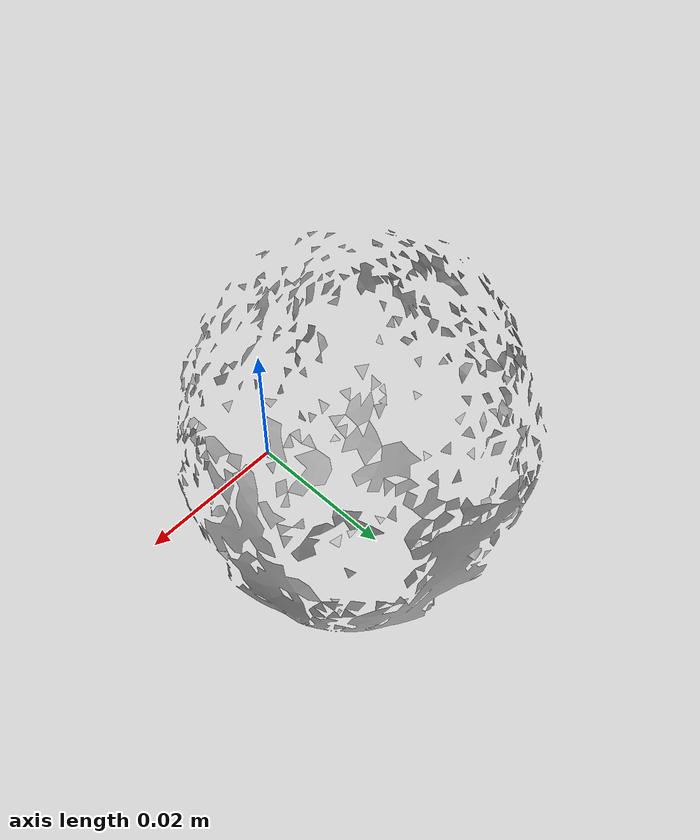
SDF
<?xml version="1.0" ?>
<sdf version="1.4">
  <model name='ycb_012_strawberry'>
    <link name='body'>
      <inertial>
        <mass>0.018</mass>
        <pose>-0.0014938727782 0.015432679886 0.0211145032806 0 0 0</pose>
        <inertia>
          <ixx>3.73097308073e-06</ixx>
          <ixy>-3.64236231046e-07</ixy>
          <ixz>-9.69512442571e-09</ixz>
          <iyy>3.8071871695e-06</iyy>
          <iyz>-1.11398280319e-07</iyz>
          <izz>3.76162292104e-06</izz>
        </inertia>
      </inertial>
      <visual name='ycb_012_strawberry_visual'>
        <pose>0 0 0 0 0 0</pose>
        <geometry>
          <mesh>
            <uri>model://ycb_012_strawberry/meshes/textured.dae</uri>
          </mesh>
        </geometry>
      </visual>
      <collision name='ycb_012_strawberry_collision'>
        <pose>0 0 0 0 0 0</pose>
        <geometry>
          <mesh>
            <uri>model://ycb_012_strawberry/meshes/nontextured.stl</uri>
          </mesh>
        </geometry>
        <max_contacts>10</max_contacts>
      </collision>
    </link>
  </model>
</sdf>
